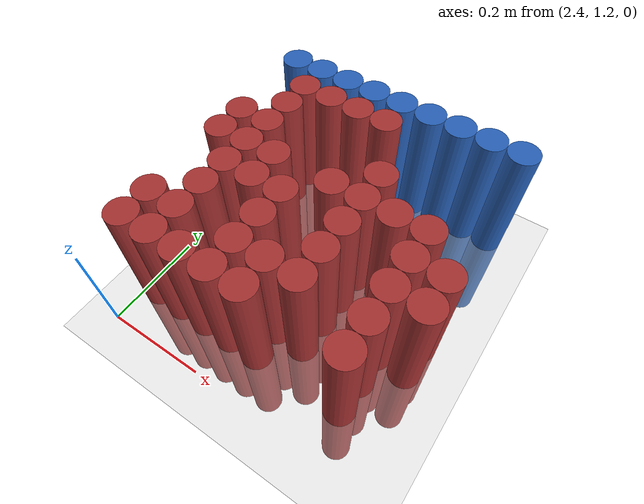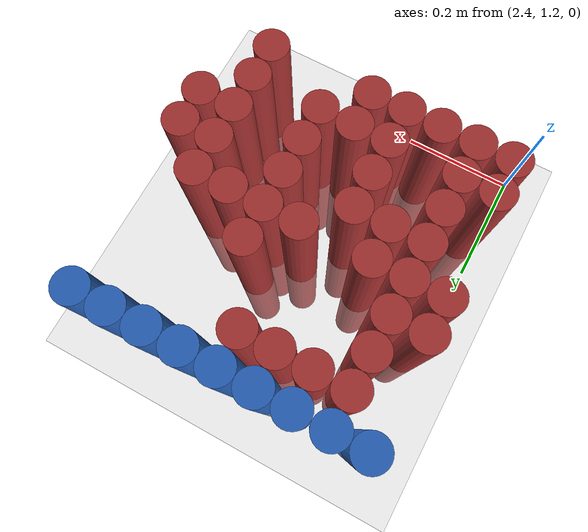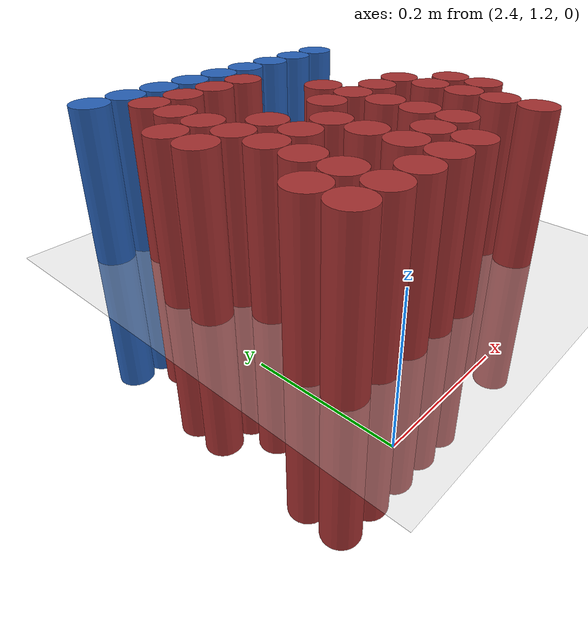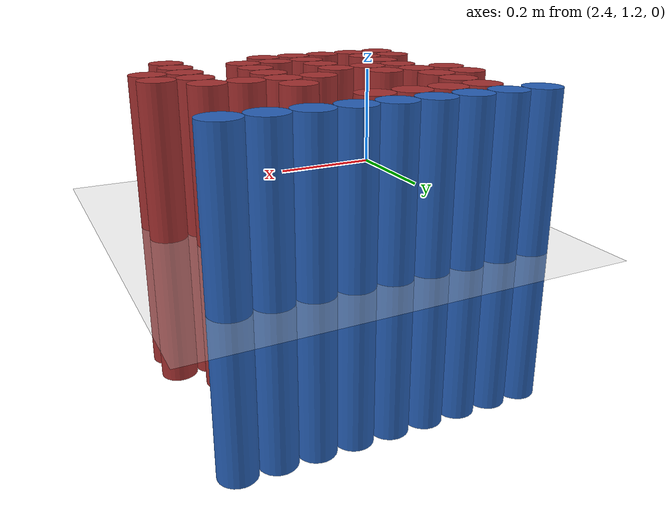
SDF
<sdf version="1.6">
 <world name="default">
  <model name="ground_plane">
   <static>1</static>
   <link name="link">
    <collision name="collision">
     <geometry><plane><normal>0 0 1</normal><size>100 100</size></plane></geometry>
     <surface><friction><ode><mu>100</mu><mu2>50</mu2></ode></friction></surface>
    </collision>
    <visual name="visual">
     <cast_shadows>0</cast_shadows>
     <geometry><plane><normal>0 0 1</normal><size>100 100</size></plane></geometry>
     <material>
      <script><uri>file://media/materials/scripts/gazebo.material</uri><name>Gazebo/Grey</name></script>
     </material>
    </visual>
   </link>
  </model>
  <model name="unit_cylinder_101">
   <static>1</static>
   <pose>2.430000 1.770000 0.000000 0.000000 0.000000 0.000000</pose>
   <link name="link">
    <inertial>
     <mass>1</mass>
     <inertia><ixx>0.145833</ixx><ixy>0</ixy><ixz>0</ixz><iyy>0.145833</iyy><iyz>0</iyz><izz>0.125</izz></inertia>
    </inertial>
    <collision name="collision">
     <geometry><cylinder><radius>0.030000</radius><length>0.5</length></cylinder></geometry>
    </collision>
    <visual name="visual">
     <geometry><cylinder><radius>0.030000</radius><length>0.5</length></cylinder></geometry>
     <material>
      <ambient>0.152000 0.379000 0.720000 1</ambient>
      <diffuse>0.152000 0.379000 0.720000 1</diffuse>
     </material>
     <material>
      <script><name>Gazebo/Grey</name><uri>file://media/materials/scripts/gazebo.material</uri></script>
     </material>
    </visual>
   </link>
  </model>
  <model name="unit_cylinder_102">
   <static>1</static>
   <pose>2.490000 1.770000 0.000000 0.000000 0.000000 0.000000</pose>
   <link name="link">
    <inertial>
     <mass>1</mass>
     <inertia><ixx>0.145833</ixx><ixy>0</ixy><ixz>0</ixz><iyy>0.145833</iyy><iyz>0</iyz><izz>0.125</izz></inertia>
    </inertial>
    <collision name="collision">
     <geometry><cylinder><radius>0.030000</radius><length>0.5</length></cylinder></geometry>
    </collision>
    <visual name="visual">
     <geometry><cylinder><radius>0.030000</radius><length>0.5</length></cylinder></geometry>
     <material>
      <ambient>0.152000 0.379000 0.720000 1</ambient>
      <diffuse>0.152000 0.379000 0.720000 1</diffuse>
     </material>
     <material>
      <script><name>Gazebo/Grey</name><uri>file://media/materials/scripts/gazebo.material</uri></script>
     </material>
    </visual>
   </link>
  </model>
  <model name="unit_cylinder_103">
   <static>1</static>
   <pose>2.550000 1.770000 0.000000 0.000000 0.000000 0.000000</pose>
   <link name="link">
    <inertial>
     <mass>1</mass>
     <inertia><ixx>0.145833</ixx><ixy>0</ixy><ixz>0</ixz><iyy>0.145833</iyy><iyz>0</iyz><izz>0.125</izz></inertia>
    </inertial>
    <collision name="collision">
     <geometry><cylinder><radius>0.030000</radius><length>0.5</length></cylinder></geometry>
    </collision>
    <visual name="visual">
     <geometry><cylinder><radius>0.030000</radius><length>0.5</length></cylinder></geometry>
     <material>
      <ambient>0.152000 0.379000 0.720000 1</ambient>
      <diffuse>0.152000 0.379000 0.720000 1</diffuse>
     </material>
     <material>
      <script><name>Gazebo/Grey</name><uri>file://media/materials/scripts/gazebo.material</uri></script>
     </material>
    </visual>
   </link>
  </model>
  <model name="unit_cylinder_104">
   <static>1</static>
   <pose>2.610000 1.770000 0.000000 0.000000 0.000000 0.000000</pose>
   <link name="link">
    <inertial>
     <mass>1</mass>
     <inertia><ixx>0.145833</ixx><ixy>0</ixy><ixz>0</ixz><iyy>0.145833</iyy><iyz>0</iyz><izz>0.125</izz></inertia>
    </inertial>
    <collision name="collision">
     <geometry><cylinder><radius>0.030000</radius><length>0.5</length></cylinder></geometry>
    </collision>
    <visual name="visual">
     <geometry><cylinder><radius>0.030000</radius><length>0.5</length></cylinder></geometry>
     <material>
      <ambient>0.152000 0.379000 0.720000 1</ambient>
      <diffuse>0.152000 0.379000 0.720000 1</diffuse>
     </material>
     <material>
      <script><name>Gazebo/Grey</name><uri>file://media/materials/scripts/gazebo.material</uri></script>
     </material>
    </visual>
   </link>
  </model>
  <model name="unit_cylinder_105">
   <static>1</static>
   <pose>2.670000 1.770000 0.000000 0.000000 0.000000 0.000000</pose>
   <link name="link">
    <inertial>
     <mass>1</mass>
     <inertia><ixx>0.145833</ixx><ixy>0</ixy><ixz>0</ixz><iyy>0.145833</iyy><iyz>0</iyz><izz>0.125</izz></inertia>
    </inertial>
    <collision name="collision">
     <geometry><cylinder><radius>0.030000</radius><length>0.5</length></cylinder></geometry>
    </collision>
    <visual name="visual">
     <geometry><cylinder><radius>0.030000</radius><length>0.5</length></cylinder></geometry>
     <material>
      <ambient>0.152000 0.379000 0.720000 1</ambient>
      <diffuse>0.152000 0.379000 0.720000 1</diffuse>
     </material>
     <material>
      <script><name>Gazebo/Grey</name><uri>file://media/materials/scripts/gazebo.material</uri></script>
     </material>
    </visual>
   </link>
  </model>
  <model name="unit_cylinder_106">
   <static>1</static>
   <pose>2.730000 1.770000 0.000000 0.000000 0.000000 0.000000</pose>
   <link name="link">
    <inertial>
     <mass>1</mass>
     <inertia><ixx>0.145833</ixx><ixy>0</ixy><ixz>0</ixz><iyy>0.145833</iyy><iyz>0</iyz><izz>0.125</izz></inertia>
    </inertial>
    <collision name="collision">
     <geometry><cylinder><radius>0.030000</radius><length>0.5</length></cylinder></geometry>
    </collision>
    <visual name="visual">
     <geometry><cylinder><radius>0.030000</radius><length>0.5</length></cylinder></geometry>
     <material>
      <ambient>0.152000 0.379000 0.720000 1</ambient>
      <diffuse>0.152000 0.379000 0.720000 1</diffuse>
     </material>
     <material>
      <script><name>Gazebo/Grey</name><uri>file://media/materials/scripts/gazebo.material</uri></script>
     </material>
    </visual>
   </link>
  </model>
  <model name="unit_cylinder_107">
   <static>1</static>
   <pose>2.790000 1.770000 0.000000 0.000000 0.000000 0.000000</pose>
   <link name="link">
    <inertial>
     <mass>1</mass>
     <inertia><ixx>0.145833</ixx><ixy>0</ixy><ixz>0</ixz><iyy>0.145833</iyy><iyz>0</iyz><izz>0.125</izz></inertia>
    </inertial>
    <collision name="collision">
     <geometry><cylinder><radius>0.030000</radius><length>0.5</length></cylinder></geometry>
    </collision>
    <visual name="visual">
     <geometry><cylinder><radius>0.030000</radius><length>0.5</length></cylinder></geometry>
     <material>
      <ambient>0.152000 0.379000 0.720000 1</ambient>
      <diffuse>0.152000 0.379000 0.720000 1</diffuse>
     </material>
     <material>
      <script><name>Gazebo/Grey</name><uri>file://media/materials/scripts/gazebo.material</uri></script>
     </material>
    </visual>
   </link>
  </model>
  <model name="unit_cylinder_108">
   <static>1</static>
   <pose>2.850000 1.770000 0.000000 0.000000 0.000000 0.000000</pose>
   <link name="link">
    <inertial>
     <mass>1</mass>
     <inertia><ixx>0.145833</ixx><ixy>0</ixy><ixz>0</ixz><iyy>0.145833</iyy><iyz>0</iyz><izz>0.125</izz></inertia>
    </inertial>
    <collision name="collision">
     <geometry><cylinder><radius>0.030000</radius><length>0.5</length></cylinder></geometry>
    </collision>
    <visual name="visual">
     <geometry><cylinder><radius>0.030000</radius><length>0.5</length></cylinder></geometry>
     <material>
      <ambient>0.152000 0.379000 0.720000 1</ambient>
      <diffuse>0.152000 0.379000 0.720000 1</diffuse>
     </material>
     <material>
      <script><name>Gazebo/Grey</name><uri>file://media/materials/scripts/gazebo.material</uri></script>
     </material>
    </visual>
   </link>
  </model>
  <model name="unit_cylinder_109">
   <static>1</static>
   <pose>2.910000 1.770000 0.000000 0.000000 0.000000 0.000000</pose>
   <link name="link">
    <inertial>
     <mass>1</mass>
     <inertia><ixx>0.145833</ixx><ixy>0</ixy><ixz>0</ixz><iyy>0.145833</iyy><iyz>0</iyz><izz>0.125</izz></inertia>
    </inertial>
    <collision name="collision">
     <geometry><cylinder><radius>0.030000</radius><length>0.5</length></cylinder></geometry>
    </collision>
    <visual name="visual">
     <geometry><cylinder><radius>0.030000</radius><length>0.5</length></cylinder></geometry>
     <material>
      <ambient>0.152000 0.379000 0.720000 1</ambient>
      <diffuse>0.152000 0.379000 0.720000 1</diffuse>
     </material>
     <material>
      <script><name>Gazebo/Grey</name><uri>file://media/materials/scripts/gazebo.material</uri></script>
     </material>
    </visual>
   </link>
  </model>
  <model name="unit_cylinder_127">
   <static>1</static>
   <pose>2.490000 1.710000 0.000000 0.000000 0.000000 0.000000</pose>
   <link name="link">
    <inertial>
     <mass>1</mass>
     <inertia><ixx>0.145833</ixx><ixy>0</ixy><ixz>0</ixz><iyy>0.145833</iyy><iyz>0</iyz><izz>0.125</izz></inertia>
    </inertial>
    <collision name="collision">
     <geometry><cylinder><radius>0.030000</radius><length>0.5</length></cylinder></geometry>
    </collision>
    <visual name="visual">
     <geometry><cylinder><radius>0.030000</radius><length>0.5</length></cylinder></geometry>
     <material>
      <ambient>0.648000 0.192000 0.192000 1</ambient>
      <diffuse>0.648000 0.192000 0.192000 1</diffuse>
     </material>
     <material>
      <script><name>Gazebo/Grey</name><uri>file://media/materials/scripts/gazebo.material</uri></script>
     </material>
    </visual>
   </link>
  </model>
  <model name="unit_cylinder_128">
   <static>1</static>
   <pose>2.550000 1.710000 0.000000 0.000000 0.000000 0.000000</pose>
   <link name="link">
    <inertial>
     <mass>1</mass>
     <inertia><ixx>0.145833</ixx><ixy>0</ixy><ixz>0</ixz><iyy>0.145833</iyy><iyz>0</iyz><izz>0.125</izz></inertia>
    </inertial>
    <collision name="collision">
     <geometry><cylinder><radius>0.030000</radius><length>0.5</length></cylinder></geometry>
    </collision>
    <visual name="visual">
     <geometry><cylinder><radius>0.030000</radius><length>0.5</length></cylinder></geometry>
     <material>
      <ambient>0.648000 0.192000 0.192000 1</ambient>
      <diffuse>0.648000 0.192000 0.192000 1</diffuse>
     </material>
     <material>
      <script><name>Gazebo/Grey</name><uri>file://media/materials/scripts/gazebo.material</uri></script>
     </material>
    </visual>
   </link>
  </model>
  <model name="unit_cylinder_129">
   <static>1</static>
   <pose>2.610000 1.710000 0.000000 0.000000 0.000000 0.000000</pose>
   <link name="link">
    <inertial>
     <mass>1</mass>
     <inertia><ixx>0.145833</ixx><ixy>0</ixy><ixz>0</ixz><iyy>0.145833</iyy><iyz>0</iyz><izz>0.125</izz></inertia>
    </inertial>
    <collision name="collision">
     <geometry><cylinder><radius>0.030000</radius><length>0.5</length></cylinder></geometry>
    </collision>
    <visual name="visual">
     <geometry><cylinder><radius>0.030000</radius><length>0.5</length></cylinder></geometry>
     <material>
      <ambient>0.648000 0.192000 0.192000 1</ambient>
      <diffuse>0.648000 0.192000 0.192000 1</diffuse>
     </material>
     <material>
      <script><name>Gazebo/Grey</name><uri>file://media/materials/scripts/gazebo.material</uri></script>
     </material>
    </visual>
   </link>
  </model>
  <model name="unit_cylinder_130">
   <static>1</static>
   <pose>2.670000 1.710000 0.000000 0.000000 0.000000 0.000000</pose>
   <link name="link">
    <inertial>
     <mass>1</mass>
     <inertia><ixx>0.145833</ixx><ixy>0</ixy><ixz>0</ixz><iyy>0.145833</iyy><iyz>0</iyz><izz>0.125</izz></inertia>
    </inertial>
    <collision name="collision">
     <geometry><cylinder><radius>0.030000</radius><length>0.5</length></cylinder></geometry>
    </collision>
    <visual name="visual">
     <geometry><cylinder><radius>0.030000</radius><length>0.5</length></cylinder></geometry>
     <material>
      <ambient>0.648000 0.192000 0.192000 1</ambient>
      <diffuse>0.648000 0.192000 0.192000 1</diffuse>
     </material>
     <material>
      <script><name>Gazebo/Grey</name><uri>file://media/materials/scripts/gazebo.material</uri></script>
     </material>
    </visual>
   </link>
  </model>
  <model name="unit_cylinder_140">
   <static>1</static>
   <pose>2.490000 1.650000 0.000000 0.000000 0.000000 0.000000</pose>
   <link name="link">
    <inertial>
     <mass>1</mass>
     <inertia><ixx>0.145833</ixx><ixy>0</ixy><ixz>0</ixz><iyy>0.145833</iyy><iyz>0</iyz><izz>0.125</izz></inertia>
    </inertial>
    <collision name="collision">
     <geometry><cylinder><radius>0.030000</radius><length>0.5</length></cylinder></geometry>
    </collision>
    <visual name="visual">
     <geometry><cylinder><radius>0.030000</radius><length>0.5</length></cylinder></geometry>
     <material>
      <ambient>0.648000 0.192000 0.192000 1</ambient>
      <diffuse>0.648000 0.192000 0.192000 1</diffuse>
     </material>
     <material>
      <script><name>Gazebo/Grey</name><uri>file://media/materials/scripts/gazebo.material</uri></script>
     </material>
    </visual>
   </link>
  </model>
  <model name="unit_cylinder_145">
   <static>1</static>
   <pose>2.430000 1.590000 0.000000 0.000000 0.000000 0.000000</pose>
   <link name="link">
    <inertial>
     <mass>1</mass>
     <inertia><ixx>0.145833</ixx><ixy>0</ixy><ixz>0</ixz><iyy>0.145833</iyy><iyz>0</iyz><izz>0.125</izz></inertia>
    </inertial>
    <collision name="collision">
     <geometry><cylinder><radius>0.030000</radius><length>0.5</length></cylinder></geometry>
    </collision>
    <visual name="visual">
     <geometry><cylinder><radius>0.030000</radius><length>0.5</length></cylinder></geometry>
     <material>
      <ambient>0.648000 0.192000 0.192000 1</ambient>
      <diffuse>0.648000 0.192000 0.192000 1</diffuse>
     </material>
     <material>
      <script><name>Gazebo/Grey</name><uri>file://media/materials/scripts/gazebo.material</uri></script>
     </material>
    </visual>
   </link>
  </model>
  <model name="unit_cylinder_146">
   <static>1</static>
   <pose>2.490000 1.590000 0.000000 0.000000 0.000000 0.000000</pose>
   <link name="link">
    <inertial>
     <mass>1</mass>
     <inertia><ixx>0.145833</ixx><ixy>0</ixy><ixz>0</ixz><iyy>0.145833</iyy><iyz>0</iyz><izz>0.125</izz></inertia>
    </inertial>
    <collision name="collision">
     <geometry><cylinder><radius>0.030000</radius><length>0.5</length></cylinder></geometry>
    </collision>
    <visual name="visual">
     <geometry><cylinder><radius>0.030000</radius><length>0.5</length></cylinder></geometry>
     <material>
      <ambient>0.648000 0.192000 0.192000 1</ambient>
      <diffuse>0.648000 0.192000 0.192000 1</diffuse>
     </material>
     <material>
      <script><name>Gazebo/Grey</name><uri>file://media/materials/scripts/gazebo.material</uri></script>
     </material>
    </visual>
   </link>
  </model>
  <model name="unit_cylinder_147">
   <static>1</static>
   <pose>2.730000 1.590000 0.000000 0.000000 0.000000 0.000000</pose>
   <link name="link">
    <inertial>
     <mass>1</mass>
     <inertia><ixx>0.145833</ixx><ixy>0</ixy><ixz>0</ixz><iyy>0.145833</iyy><iyz>0</iyz><izz>0.125</izz></inertia>
    </inertial>
    <collision name="collision">
     <geometry><cylinder><radius>0.030000</radius><length>0.5</length></cylinder></geometry>
    </collision>
    <visual name="visual">
     <geometry><cylinder><radius>0.030000</radius><length>0.5</length></cylinder></geometry>
     <material>
      <ambient>0.648000 0.192000 0.192000 1</ambient>
      <diffuse>0.648000 0.192000 0.192000 1</diffuse>
     </material>
     <material>
      <script><name>Gazebo/Grey</name><uri>file://media/materials/scripts/gazebo.material</uri></script>
     </material>
    </visual>
   </link>
  </model>
  <model name="unit_cylinder_152">
   <static>1</static>
   <pose>2.430000 1.530000 0.000000 0.000000 0.000000 0.000000</pose>
   <link name="link">
    <inertial>
     <mass>1</mass>
     <inertia><ixx>0.145833</ixx><ixy>0</ixy><ixz>0</ixz><iyy>0.145833</iyy><iyz>0</iyz><izz>0.125</izz></inertia>
    </inertial>
    <collision name="collision">
     <geometry><cylinder><radius>0.030000</radius><length>0.5</length></cylinder></geometry>
    </collision>
    <visual name="visual">
     <geometry><cylinder><radius>0.030000</radius><length>0.5</length></cylinder></geometry>
     <material>
      <ambient>0.648000 0.192000 0.192000 1</ambient>
      <diffuse>0.648000 0.192000 0.192000 1</diffuse>
     </material>
     <material>
      <script><name>Gazebo/Grey</name><uri>file://media/materials/scripts/gazebo.material</uri></script>
     </material>
    </visual>
   </link>
  </model>
  <model name="unit_cylinder_153">
   <static>1</static>
   <pose>2.490000 1.530000 0.000000 0.000000 0.000000 0.000000</pose>
   <link name="link">
    <inertial>
     <mass>1</mass>
     <inertia><ixx>0.145833</ixx><ixy>0</ixy><ixz>0</ixz><iyy>0.145833</iyy><iyz>0</iyz><izz>0.125</izz></inertia>
    </inertial>
    <collision name="collision">
     <geometry><cylinder><radius>0.030000</radius><length>0.5</length></cylinder></geometry>
    </collision>
    <visual name="visual">
     <geometry><cylinder><radius>0.030000</radius><length>0.5</length></cylinder></geometry>
     <material>
      <ambient>0.648000 0.192000 0.192000 1</ambient>
      <diffuse>0.648000 0.192000 0.192000 1</diffuse>
     </material>
     <material>
      <script><name>Gazebo/Grey</name><uri>file://media/materials/scripts/gazebo.material</uri></script>
     </material>
    </visual>
   </link>
  </model>
  <model name="unit_cylinder_154">
   <static>1</static>
   <pose>2.550000 1.530000 0.000000 0.000000 0.000000 0.000000</pose>
   <link name="link">
    <inertial>
     <mass>1</mass>
     <inertia><ixx>0.145833</ixx><ixy>0</ixy><ixz>0</ixz><iyy>0.145833</iyy><iyz>0</iyz><izz>0.125</izz></inertia>
    </inertial>
    <collision name="collision">
     <geometry><cylinder><radius>0.030000</radius><length>0.5</length></cylinder></geometry>
    </collision>
    <visual name="visual">
     <geometry><cylinder><radius>0.030000</radius><length>0.5</length></cylinder></geometry>
     <material>
      <ambient>0.648000 0.192000 0.192000 1</ambient>
      <diffuse>0.648000 0.192000 0.192000 1</diffuse>
     </material>
     <material>
      <script><name>Gazebo/Grey</name><uri>file://media/materials/scripts/gazebo.material</uri></script>
     </material>
    </visual>
   </link>
  </model>
  <model name="unit_cylinder_155">
   <static>1</static>
   <pose>2.670000 1.530000 0.000000 0.000000 0.000000 0.000000</pose>
   <link name="link">
    <inertial>
     <mass>1</mass>
     <inertia><ixx>0.145833</ixx><ixy>0</ixy><ixz>0</ixz><iyy>0.145833</iyy><iyz>0</iyz><izz>0.125</izz></inertia>
    </inertial>
    <collision name="collision">
     <geometry><cylinder><radius>0.030000</radius><length>0.5</length></cylinder></geometry>
    </collision>
    <visual name="visual">
     <geometry><cylinder><radius>0.030000</radius><length>0.5</length></cylinder></geometry>
     <material>
      <ambient>0.648000 0.192000 0.192000 1</ambient>
      <diffuse>0.648000 0.192000 0.192000 1</diffuse>
     </material>
     <material>
      <script><name>Gazebo/Grey</name><uri>file://media/materials/scripts/gazebo.material</uri></script>
     </material>
    </visual>
   </link>
  </model>
  <model name="unit_cylinder_156">
   <static>1</static>
   <pose>2.730000 1.530000 0.000000 0.000000 0.000000 0.000000</pose>
   <link name="link">
    <inertial>
     <mass>1</mass>
     <inertia><ixx>0.145833</ixx><ixy>0</ixy><ixz>0</ixz><iyy>0.145833</iyy><iyz>0</iyz><izz>0.125</izz></inertia>
    </inertial>
    <collision name="collision">
     <geometry><cylinder><radius>0.030000</radius><length>0.5</length></cylinder></geometry>
    </collision>
    <visual name="visual">
     <geometry><cylinder><radius>0.030000</radius><length>0.5</length></cylinder></geometry>
     <material>
      <ambient>0.648000 0.192000 0.192000 1</ambient>
      <diffuse>0.648000 0.192000 0.192000 1</diffuse>
     </material>
     <material>
      <script><name>Gazebo/Grey</name><uri>file://media/materials/scripts/gazebo.material</uri></script>
     </material>
    </visual>
   </link>
  </model>
  <model name="unit_cylinder_157">
   <static>1</static>
   <pose>2.790000 1.530000 0.000000 0.000000 0.000000 0.000000</pose>
   <link name="link">
    <inertial>
     <mass>1</mass>
     <inertia><ixx>0.145833</ixx><ixy>0</ixy><ixz>0</ixz><iyy>0.145833</iyy><iyz>0</iyz><izz>0.125</izz></inertia>
    </inertial>
    <collision name="collision">
     <geometry><cylinder><radius>0.030000</radius><length>0.5</length></cylinder></geometry>
    </collision>
    <visual name="visual">
     <geometry><cylinder><radius>0.030000</radius><length>0.5</length></cylinder></geometry>
     <material>
      <ambient>0.648000 0.192000 0.192000 1</ambient>
      <diffuse>0.648000 0.192000 0.192000 1</diffuse>
     </material>
     <material>
      <script><name>Gazebo/Grey</name><uri>file://media/materials/scripts/gazebo.material</uri></script>
     </material>
    </visual>
   </link>
  </model>
  <model name="unit_cylinder_158">
   <static>1</static>
   <pose>2.850000 1.530000 0.000000 0.000000 0.000000 0.000000</pose>
   <link name="link">
    <inertial>
     <mass>1</mass>
     <inertia><ixx>0.145833</ixx><ixy>0</ixy><ixz>0</ixz><iyy>0.145833</iyy><iyz>0</iyz><izz>0.125</izz></inertia>
    </inertial>
    <collision name="collision">
     <geometry><cylinder><radius>0.030000</radius><length>0.5</length></cylinder></geometry>
    </collision>
    <visual name="visual">
     <geometry><cylinder><radius>0.030000</radius><length>0.5</length></cylinder></geometry>
     <material>
      <ambient>0.648000 0.192000 0.192000 1</ambient>
      <diffuse>0.648000 0.192000 0.192000 1</diffuse>
     </material>
     <material>
      <script><name>Gazebo/Grey</name><uri>file://media/materials/scripts/gazebo.material</uri></script>
     </material>
    </visual>
   </link>
  </model>
  <model name="unit_cylinder_166">
   <static>1</static>
   <pose>2.490000 1.470000 0.000000 0.000000 0.000000 0.000000</pose>
   <link name="link">
    <inertial>
     <mass>1</mass>
     <inertia><ixx>0.145833</ixx><ixy>0</ixy><ixz>0</ixz><iyy>0.145833</iyy><iyz>0</iyz><izz>0.125</izz></inertia>
    </inertial>
    <collision name="collision">
     <geometry><cylinder><radius>0.030000</radius><length>0.5</length></cylinder></geometry>
    </collision>
    <visual name="visual">
     <geometry><cylinder><radius>0.030000</radius><length>0.5</length></cylinder></geometry>
     <material>
      <ambient>0.648000 0.192000 0.192000 1</ambient>
      <diffuse>0.648000 0.192000 0.192000 1</diffuse>
     </material>
     <material>
      <script><name>Gazebo/Grey</name><uri>file://media/materials/scripts/gazebo.material</uri></script>
     </material>
    </visual>
   </link>
  </model>
  <model name="unit_cylinder_167">
   <static>1</static>
   <pose>2.550000 1.470000 0.000000 0.000000 0.000000 0.000000</pose>
   <link name="link">
    <inertial>
     <mass>1</mass>
     <inertia><ixx>0.145833</ixx><ixy>0</ixy><ixz>0</ixz><iyy>0.145833</iyy><iyz>0</iyz><izz>0.125</izz></inertia>
    </inertial>
    <collision name="collision">
     <geometry><cylinder><radius>0.030000</radius><length>0.5</length></cylinder></geometry>
    </collision>
    <visual name="visual">
     <geometry><cylinder><radius>0.030000</radius><length>0.5</length></cylinder></geometry>
     <material>
      <ambient>0.648000 0.192000 0.192000 1</ambient>
      <diffuse>0.648000 0.192000 0.192000 1</diffuse>
     </material>
     <material>
      <script><name>Gazebo/Grey</name><uri>file://media/materials/scripts/gazebo.material</uri></script>
     </material>
    </visual>
   </link>
  </model>
  <model name="unit_cylinder_168">
   <static>1</static>
   <pose>2.610000 1.470000 0.000000 0.000000 0.000000 0.000000</pose>
   <link name="link">
    <inertial>
     <mass>1</mass>
     <inertia><ixx>0.145833</ixx><ixy>0</ixy><ixz>0</ixz><iyy>0.145833</iyy><iyz>0</iyz><izz>0.125</izz></inertia>
    </inertial>
    <collision name="collision">
     <geometry><cylinder><radius>0.030000</radius><length>0.5</length></cylinder></geometry>
    </collision>
    <visual name="visual">
     <geometry><cylinder><radius>0.030000</radius><length>0.5</length></cylinder></geometry>
     <material>
      <ambient>0.648000 0.192000 0.192000 1</ambient>
      <diffuse>0.648000 0.192000 0.192000 1</diffuse>
     </material>
     <material>
      <script><name>Gazebo/Grey</name><uri>file://media/materials/scripts/gazebo.material</uri></script>
     </material>
    </visual>
   </link>
  </model>
  <model name="unit_cylinder_169">
   <static>1</static>
   <pose>2.730000 1.470000 0.000000 0.000000 0.000000 0.000000</pose>
   <link name="link">
    <inertial>
     <mass>1</mass>
     <inertia><ixx>0.145833</ixx><ixy>0</ixy><ixz>0</ixz><iyy>0.145833</iyy><iyz>0</iyz><izz>0.125</izz></inertia>
    </inertial>
    <collision name="collision">
     <geometry><cylinder><radius>0.030000</radius><length>0.5</length></cylinder></geometry>
    </collision>
    <visual name="visual">
     <geometry><cylinder><radius>0.030000</radius><length>0.5</length></cylinder></geometry>
     <material>
      <ambient>0.648000 0.192000 0.192000 1</ambient>
      <diffuse>0.648000 0.192000 0.192000 1</diffuse>
     </material>
     <material>
      <script><name>Gazebo/Grey</name><uri>file://media/materials/scripts/gazebo.material</uri></script>
     </material>
    </visual>
   </link>
  </model>
  <model name="unit_cylinder_170">
   <static>1</static>
   <pose>2.850000 1.470000 0.000000 0.000000 0.000000 0.000000</pose>
   <link name="link">
    <inertial>
     <mass>1</mass>
     <inertia><ixx>0.145833</ixx><ixy>0</ixy><ixz>0</ixz><iyy>0.145833</iyy><iyz>0</iyz><izz>0.125</izz></inertia>
    </inertial>
    <collision name="collision">
     <geometry><cylinder><radius>0.030000</radius><length>0.5</length></cylinder></geometry>
    </collision>
    <visual name="visual">
     <geometry><cylinder><radius>0.030000</radius><length>0.5</length></cylinder></geometry>
     <material>
      <ambient>0.648000 0.192000 0.192000 1</ambient>
      <diffuse>0.648000 0.192000 0.192000 1</diffuse>
     </material>
     <material>
      <script><name>Gazebo/Grey</name><uri>file://media/materials/scripts/gazebo.material</uri></script>
     </material>
    </visual>
   </link>
  </model>
  <model name="unit_cylinder_171">
   <static>1</static>
   <pose>2.910000 1.470000 0.000000 0.000000 0.000000 0.000000</pose>
   <link name="link">
    <inertial>
     <mass>1</mass>
     <inertia><ixx>0.145833</ixx><ixy>0</ixy><ixz>0</ixz><iyy>0.145833</iyy><iyz>0</iyz><izz>0.125</izz></inertia>
    </inertial>
    <collision name="collision">
     <geometry><cylinder><radius>0.030000</radius><length>0.5</length></cylinder></geometry>
    </collision>
    <visual name="visual">
     <geometry><cylinder><radius>0.030000</radius><length>0.5</length></cylinder></geometry>
     <material>
      <ambient>0.648000 0.192000 0.192000 1</ambient>
      <diffuse>0.648000 0.192000 0.192000 1</diffuse>
     </material>
     <material>
      <script><name>Gazebo/Grey</name><uri>file://media/materials/scripts/gazebo.material</uri></script>
     </material>
    </visual>
   </link>
  </model>
  <model name="unit_cylinder_176">
   <static>1</static>
   <pose>2.490000 1.410000 0.000000 0.000000 0.000000 0.000000</pose>
   <link name="link">
    <inertial>
     <mass>1</mass>
     <inertia><ixx>0.145833</ixx><ixy>0</ixy><ixz>0</ixz><iyy>0.145833</iyy><iyz>0</iyz><izz>0.125</izz></inertia>
    </inertial>
    <collision name="collision">
     <geometry><cylinder><radius>0.030000</radius><length>0.5</length></cylinder></geometry>
    </collision>
    <visual name="visual">
     <geometry><cylinder><radius>0.030000</radius><length>0.5</length></cylinder></geometry>
     <material>
      <ambient>0.648000 0.192000 0.192000 1</ambient>
      <diffuse>0.648000 0.192000 0.192000 1</diffuse>
     </material>
     <material>
      <script><name>Gazebo/Grey</name><uri>file://media/materials/scripts/gazebo.material</uri></script>
     </material>
    </visual>
   </link>
  </model>
  <model name="unit_cylinder_177">
   <static>1</static>
   <pose>2.610000 1.410000 0.000000 0.000000 0.000000 0.000000</pose>
   <link name="link">
    <inertial>
     <mass>1</mass>
     <inertia><ixx>0.145833</ixx><ixy>0</ixy><ixz>0</ixz><iyy>0.145833</iyy><iyz>0</iyz><izz>0.125</izz></inertia>
    </inertial>
    <collision name="collision">
     <geometry><cylinder><radius>0.030000</radius><length>0.5</length></cylinder></geometry>
    </collision>
    <visual name="visual">
     <geometry><cylinder><radius>0.030000</radius><length>0.5</length></cylinder></geometry>
     <material>
      <ambient>0.648000 0.192000 0.192000 1</ambient>
      <diffuse>0.648000 0.192000 0.192000 1</diffuse>
     </material>
     <material>
      <script><name>Gazebo/Grey</name><uri>file://media/materials/scripts/gazebo.material</uri></script>
     </material>
    </visual>
   </link>
  </model>
  <model name="unit_cylinder_178">
   <static>1</static>
   <pose>2.730000 1.410000 0.000000 0.000000 0.000000 0.000000</pose>
   <link name="link">
    <inertial>
     <mass>1</mass>
     <inertia><ixx>0.145833</ixx><ixy>0</ixy><ixz>0</ixz><iyy>0.145833</iyy><iyz>0</iyz><izz>0.125</izz></inertia>
    </inertial>
    <collision name="collision">
     <geometry><cylinder><radius>0.030000</radius><length>0.5</length></cylinder></geometry>
    </collision>
    <visual name="visual">
     <geometry><cylinder><radius>0.030000</radius><length>0.5</length></cylinder></geometry>
     <material>
      <ambient>0.648000 0.192000 0.192000 1</ambient>
      <diffuse>0.648000 0.192000 0.192000 1</diffuse>
     </material>
     <material>
      <script><name>Gazebo/Grey</name><uri>file://media/materials/scripts/gazebo.material</uri></script>
     </material>
    </visual>
   </link>
  </model>
  <model name="unit_cylinder_179">
   <static>1</static>
   <pose>2.850000 1.410000 0.000000 0.000000 0.000000 0.000000</pose>
   <link name="link">
    <inertial>
     <mass>1</mass>
     <inertia><ixx>0.145833</ixx><ixy>0</ixy><ixz>0</ixz><iyy>0.145833</iyy><iyz>0</iyz><izz>0.125</izz></inertia>
    </inertial>
    <collision name="collision">
     <geometry><cylinder><radius>0.030000</radius><length>0.5</length></cylinder></geometry>
    </collision>
    <visual name="visual">
     <geometry><cylinder><radius>0.030000</radius><length>0.5</length></cylinder></geometry>
     <material>
      <ambient>0.648000 0.192000 0.192000 1</ambient>
      <diffuse>0.648000 0.192000 0.192000 1</diffuse>
     </material>
     <material>
      <script><name>Gazebo/Grey</name><uri>file://media/materials/scripts/gazebo.material</uri></script>
     </material>
    </visual>
   </link>
  </model>
  <model name="unit_cylinder_180">
   <static>1</static>
   <pose>2.910000 1.410000 0.000000 0.000000 0.000000 0.000000</pose>
   <link name="link">
    <inertial>
     <mass>1</mass>
     <inertia><ixx>0.145833</ixx><ixy>0</ixy><ixz>0</ixz><iyy>0.145833</iyy><iyz>0</iyz><izz>0.125</izz></inertia>
    </inertial>
    <collision name="collision">
     <geometry><cylinder><radius>0.030000</radius><length>0.5</length></cylinder></geometry>
    </collision>
    <visual name="visual">
     <geometry><cylinder><radius>0.030000</radius><length>0.5</length></cylinder></geometry>
     <material>
      <ambient>0.648000 0.192000 0.192000 1</ambient>
      <diffuse>0.648000 0.192000 0.192000 1</diffuse>
     </material>
     <material>
      <script><name>Gazebo/Grey</name><uri>file://media/materials/scripts/gazebo.material</uri></script>
     </material>
    </visual>
   </link>
  </model>
  <model name="unit_cylinder_183">
   <static>1</static>
   <pose>2.430000 1.350000 0.000000 0.000000 0.000000 0.000000</pose>
   <link name="link">
    <inertial>
     <mass>1</mass>
     <inertia><ixx>0.145833</ixx><ixy>0</ixy><ixz>0</ixz><iyy>0.145833</iyy><iyz>0</iyz><izz>0.125</izz></inertia>
    </inertial>
    <collision name="collision">
     <geometry><cylinder><radius>0.030000</radius><length>0.5</length></cylinder></geometry>
    </collision>
    <visual name="visual">
     <geometry><cylinder><radius>0.030000</radius><length>0.5</length></cylinder></geometry>
     <material>
      <ambient>0.648000 0.192000 0.192000 1</ambient>
      <diffuse>0.648000 0.192000 0.192000 1</diffuse>
     </material>
     <material>
      <script><name>Gazebo/Grey</name><uri>file://media/materials/scripts/gazebo.material</uri></script>
     </material>
    </visual>
   </link>
  </model>
  <model name="unit_cylinder_184">
   <static>1</static>
   <pose>2.490000 1.350000 0.000000 0.000000 0.000000 0.000000</pose>
   <link name="link">
    <inertial>
     <mass>1</mass>
     <inertia><ixx>0.145833</ixx><ixy>0</ixy><ixz>0</ixz><iyy>0.145833</iyy><iyz>0</iyz><izz>0.125</izz></inertia>
    </inertial>
    <collision name="collision">
     <geometry><cylinder><radius>0.030000</radius><length>0.5</length></cylinder></geometry>
    </collision>
    <visual name="visual">
     <geometry><cylinder><radius>0.030000</radius><length>0.5</length></cylinder></geometry>
     <material>
      <ambient>0.648000 0.192000 0.192000 1</ambient>
      <diffuse>0.648000 0.192000 0.192000 1</diffuse>
     </material>
     <material>
      <script><name>Gazebo/Grey</name><uri>file://media/materials/scripts/gazebo.material</uri></script>
     </material>
    </visual>
   </link>
  </model>
  <model name="unit_cylinder_185">
   <static>1</static>
   <pose>2.610000 1.350000 0.000000 0.000000 0.000000 0.000000</pose>
   <link name="link">
    <inertial>
     <mass>1</mass>
     <inertia><ixx>0.145833</ixx><ixy>0</ixy><ixz>0</ixz><iyy>0.145833</iyy><iyz>0</iyz><izz>0.125</izz></inertia>
    </inertial>
    <collision name="collision">
     <geometry><cylinder><radius>0.030000</radius><length>0.5</length></cylinder></geometry>
    </collision>
    <visual name="visual">
     <geometry><cylinder><radius>0.030000</radius><length>0.5</length></cylinder></geometry>
     <material>
      <ambient>0.648000 0.192000 0.192000 1</ambient>
      <diffuse>0.648000 0.192000 0.192000 1</diffuse>
     </material>
     <material>
      <script><name>Gazebo/Grey</name><uri>file://media/materials/scripts/gazebo.material</uri></script>
     </material>
    </visual>
   </link>
  </model>
  <model name="unit_cylinder_186">
   <static>1</static>
   <pose>2.670000 1.350000 0.000000 0.000000 0.000000 0.000000</pose>
   <link name="link">
    <inertial>
     <mass>1</mass>
     <inertia><ixx>0.145833</ixx><ixy>0</ixy><ixz>0</ixz><iyy>0.145833</iyy><iyz>0</iyz><izz>0.125</izz></inertia>
    </inertial>
    <collision name="collision">
     <geometry><cylinder><radius>0.030000</radius><length>0.5</length></cylinder></geometry>
    </collision>
    <visual name="visual">
     <geometry><cylinder><radius>0.030000</radius><length>0.5</length></cylinder></geometry>
     <material>
      <ambient>0.648000 0.192000 0.192000 1</ambient>
      <diffuse>0.648000 0.192000 0.192000 1</diffuse>
     </material>
     <material>
      <script><name>Gazebo/Grey</name><uri>file://media/materials/scripts/gazebo.material</uri></script>
     </material>
    </visual>
   </link>
  </model>
  <model name="unit_cylinder_187">
   <static>1</static>
   <pose>2.730000 1.350000 0.000000 0.000000 0.000000 0.000000</pose>
   <link name="link">
    <inertial>
     <mass>1</mass>
     <inertia><ixx>0.145833</ixx><ixy>0</ixy><ixz>0</ixz><iyy>0.145833</iyy><iyz>0</iyz><izz>0.125</izz></inertia>
    </inertial>
    <collision name="collision">
     <geometry><cylinder><radius>0.030000</radius><length>0.5</length></cylinder></geometry>
    </collision>
    <visual name="visual">
     <geometry><cylinder><radius>0.030000</radius><length>0.5</length></cylinder></geometry>
     <material>
      <ambient>0.648000 0.192000 0.192000 1</ambient>
      <diffuse>0.648000 0.192000 0.192000 1</diffuse>
     </material>
     <material>
      <script><name>Gazebo/Grey</name><uri>file://media/materials/scripts/gazebo.material</uri></script>
     </material>
    </visual>
   </link>
  </model>
  <model name="unit_cylinder_188">
   <static>1</static>
   <pose>2.850000 1.350000 0.000000 0.000000 0.000000 0.000000</pose>
   <link name="link">
    <inertial>
     <mass>1</mass>
     <inertia><ixx>0.145833</ixx><ixy>0</ixy><ixz>0</ixz><iyy>0.145833</iyy><iyz>0</iyz><izz>0.125</izz></inertia>
    </inertial>
    <collision name="collision">
     <geometry><cylinder><radius>0.030000</radius><length>0.5</length></cylinder></geometry>
    </collision>
    <visual name="visual">
     <geometry><cylinder><radius>0.030000</radius><length>0.5</length></cylinder></geometry>
     <material>
      <ambient>0.648000 0.192000 0.192000 1</ambient>
      <diffuse>0.648000 0.192000 0.192000 1</diffuse>
     </material>
     <material>
      <script><name>Gazebo/Grey</name><uri>file://media/materials/scripts/gazebo.material</uri></script>
     </material>
    </visual>
   </link>
  </model>
  <model name="unit_cylinder_193">
   <static>1</static>
   <pose>2.430000 1.290000 0.000000 0.000000 0.000000 0.000000</pose>
   <link name="link">
    <inertial>
     <mass>1</mass>
     <inertia><ixx>0.145833</ixx><ixy>0</ixy><ixz>0</ixz><iyy>0.145833</iyy><iyz>0</iyz><izz>0.125</izz></inertia>
    </inertial>
    <collision name="collision">
     <geometry><cylinder><radius>0.030000</radius><length>0.5</length></cylinder></geometry>
    </collision>
    <visual name="visual">
     <geometry><cylinder><radius>0.030000</radius><length>0.5</length></cylinder></geometry>
     <material>
      <ambient>0.648000 0.192000 0.192000 1</ambient>
      <diffuse>0.648000 0.192000 0.192000 1</diffuse>
     </material>
     <material>
      <script><name>Gazebo/Grey</name><uri>file://media/materials/scripts/gazebo.material</uri></script>
     </material>
    </visual>
   </link>
  </model>
  <model name="unit_cylinder_194">
   <static>1</static>
   <pose>2.490000 1.290000 0.000000 0.000000 0.000000 0.000000</pose>
   <link name="link">
    <inertial>
     <mass>1</mass>
     <inertia><ixx>0.145833</ixx><ixy>0</ixy><ixz>0</ixz><iyy>0.145833</iyy><iyz>0</iyz><izz>0.125</izz></inertia>
    </inertial>
    <collision name="collision">
     <geometry><cylinder><radius>0.030000</radius><length>0.5</length></cylinder></geometry>
    </collision>
    <visual name="visual">
     <geometry><cylinder><radius>0.030000</radius><length>0.5</length></cylinder></geometry>
     <material>
      <ambient>0.648000 0.192000 0.192000 1</ambient>
      <diffuse>0.648000 0.192000 0.192000 1</diffuse>
     </material>
     <material>
      <script><name>Gazebo/Grey</name><uri>file://media/materials/scripts/gazebo.material</uri></script>
     </material>
    </visual>
   </link>
  </model>
  <model name="unit_cylinder_195">
   <static>1</static>
   <pose>2.550000 1.290000 0.000000 0.000000 0.000000 0.000000</pose>
   <link name="link">
    <inertial>
     <mass>1</mass>
     <inertia><ixx>0.145833</ixx><ixy>0</ixy><ixz>0</ixz><iyy>0.145833</iyy><iyz>0</iyz><izz>0.125</izz></inertia>
    </inertial>
    <collision name="collision">
     <geometry><cylinder><radius>0.030000</radius><length>0.5</length></cylinder></geometry>
    </collision>
    <visual name="visual">
     <geometry><cylinder><radius>0.030000</radius><length>0.5</length></cylinder></geometry>
     <material>
      <ambient>0.648000 0.192000 0.192000 1</ambient>
      <diffuse>0.648000 0.192000 0.192000 1</diffuse>
     </material>
     <material>
      <script><name>Gazebo/Grey</name><uri>file://media/materials/scripts/gazebo.material</uri></script>
     </material>
    </visual>
   </link>
  </model>
  <model name="unit_cylinder_196">
   <static>1</static>
   <pose>2.610000 1.290000 0.000000 0.000000 0.000000 0.000000</pose>
   <link name="link">
    <inertial>
     <mass>1</mass>
     <inertia><ixx>0.145833</ixx><ixy>0</ixy><ixz>0</ixz><iyy>0.145833</iyy><iyz>0</iyz><izz>0.125</izz></inertia>
    </inertial>
    <collision name="collision">
     <geometry><cylinder><radius>0.030000</radius><length>0.5</length></cylinder></geometry>
    </collision>
    <visual name="visual">
     <geometry><cylinder><radius>0.030000</radius><length>0.5</length></cylinder></geometry>
     <material>
      <ambient>0.648000 0.192000 0.192000 1</ambient>
      <diffuse>0.648000 0.192000 0.192000 1</diffuse>
     </material>
     <material>
      <script><name>Gazebo/Grey</name><uri>file://media/materials/scripts/gazebo.material</uri></script>
     </material>
    </visual>
   </link>
  </model>
  <model name="unit_cylinder_197">
   <static>1</static>
   <pose>2.670000 1.290000 0.000000 0.000000 0.000000 0.000000</pose>
   <link name="link">
    <inertial>
     <mass>1</mass>
     <inertia><ixx>0.145833</ixx><ixy>0</ixy><ixz>0</ixz><iyy>0.145833</iyy><iyz>0</iyz><izz>0.125</izz></inertia>
    </inertial>
    <collision name="collision">
     <geometry><cylinder><radius>0.030000</radius><length>0.5</length></cylinder></geometry>
    </collision>
    <visual name="visual">
     <geometry><cylinder><radius>0.030000</radius><length>0.5</length></cylinder></geometry>
     <material>
      <ambient>0.648000 0.192000 0.192000 1</ambient>
      <diffuse>0.648000 0.192000 0.192000 1</diffuse>
     </material>
     <material>
      <script><name>Gazebo/Grey</name><uri>file://media/materials/scripts/gazebo.material</uri></script>
     </material>
    </visual>
   </link>
  </model>
  <model name="unit_cylinder_198">
   <static>1</static>
   <pose>2.850000 1.290000 0.000000 0.000000 0.000000 0.000000</pose>
   <link name="link">
    <inertial>
     <mass>1</mass>
     <inertia><ixx>0.145833</ixx><ixy>0</ixy><ixz>0</ixz><iyy>0.145833</iyy><iyz>0</iyz><izz>0.125</izz></inertia>
    </inertial>
    <collision name="collision">
     <geometry><cylinder><radius>0.030000</radius><length>0.5</length></cylinder></geometry>
    </collision>
    <visual name="visual">
     <geometry><cylinder><radius>0.030000</radius><length>0.5</length></cylinder></geometry>
     <material>
      <ambient>0.648000 0.192000 0.192000 1</ambient>
      <diffuse>0.648000 0.192000 0.192000 1</diffuse>
     </material>
     <material>
      <script><name>Gazebo/Grey</name><uri>file://media/materials/scripts/gazebo.material</uri></script>
     </material>
    </visual>
   </link>
  </model>
 </world>
</sdf>
